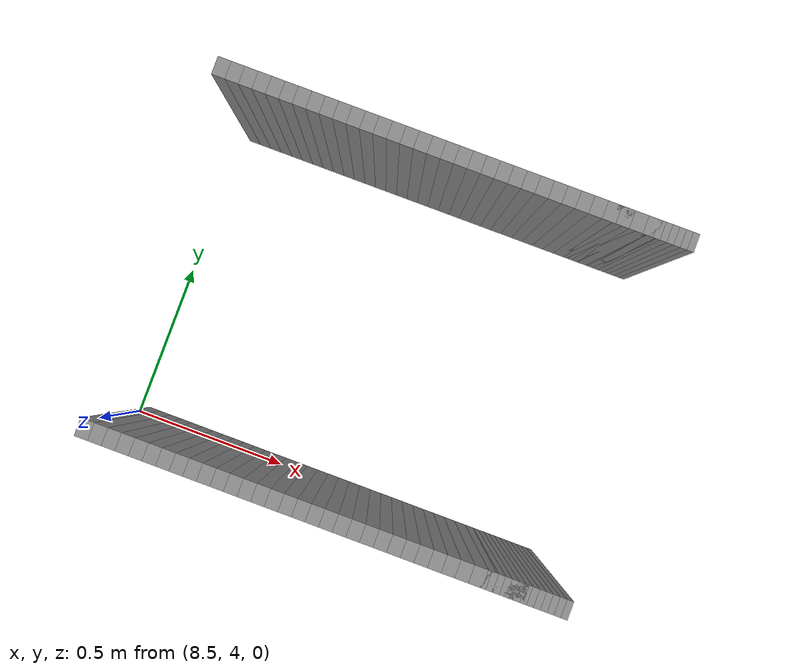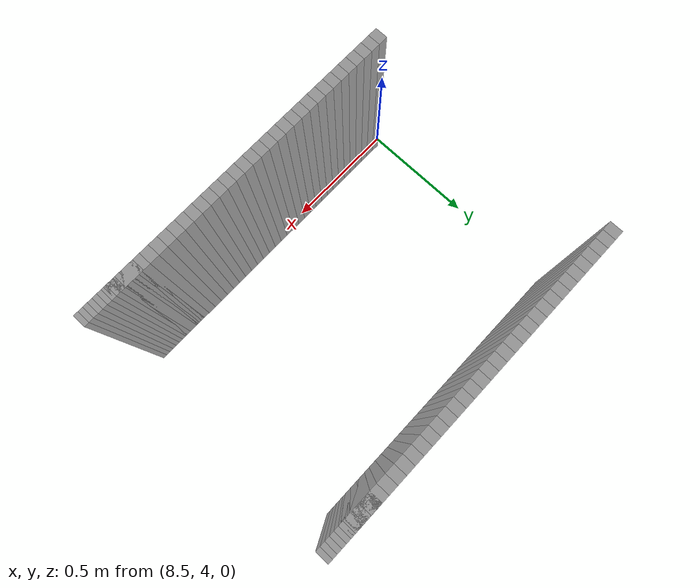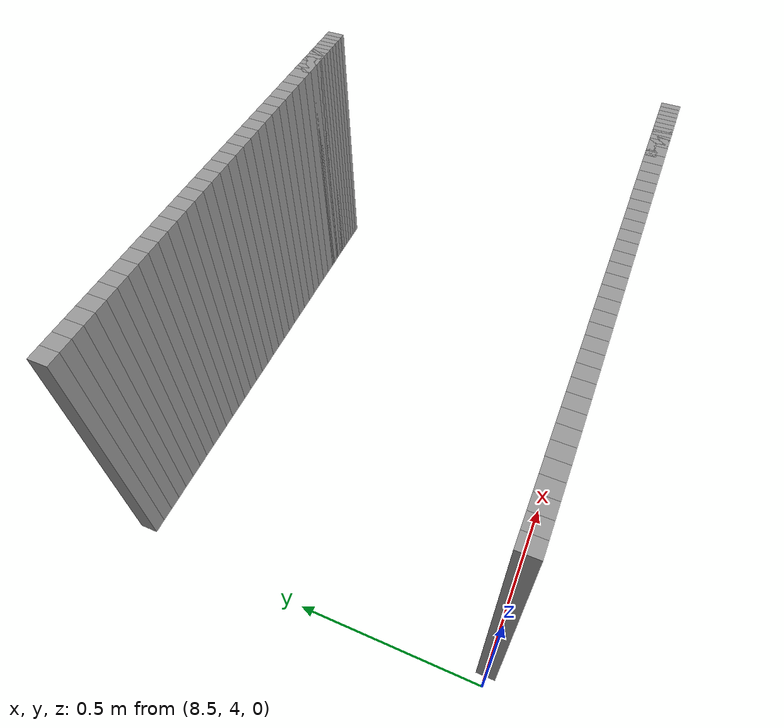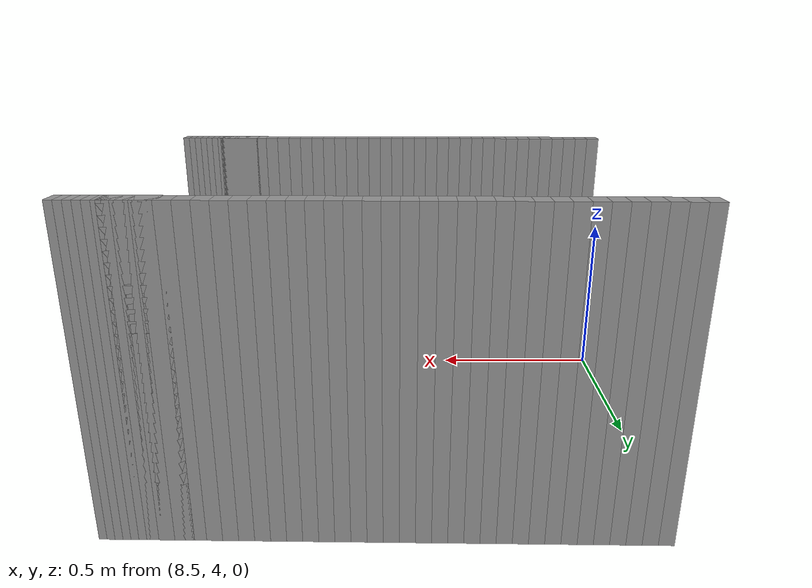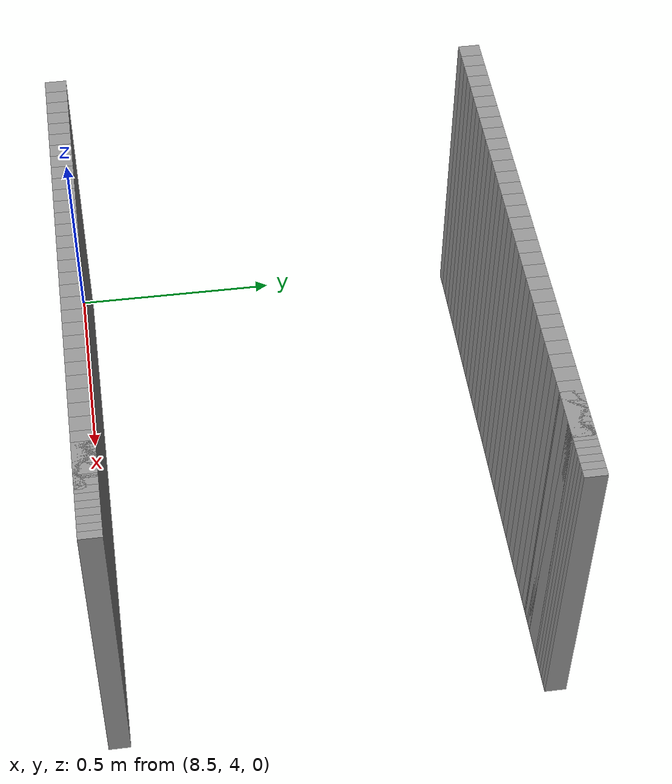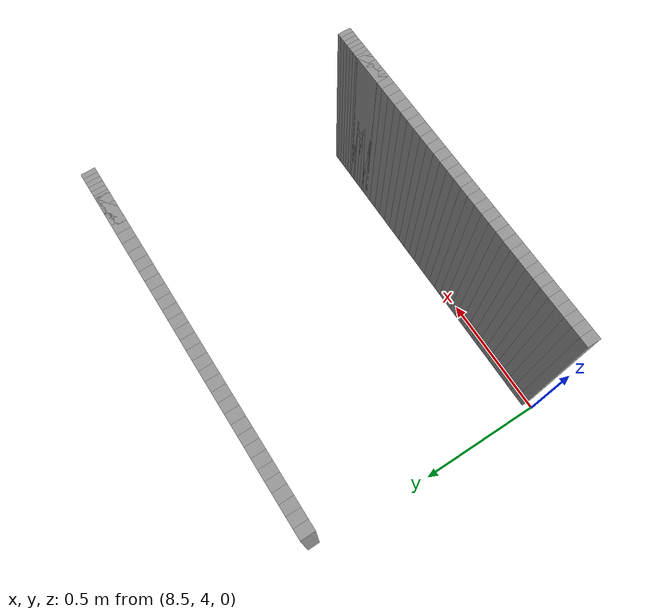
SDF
<sdf version="1.6">
 <model name="path_walls">
  <static>true</static>
  <model name="wall_left_0">
   <static>true</static>
   <pose>9.64425922822256 5.0 0.40 0 0 0.0</pose>
   <link name="wall_link">
    <visual name="wall_visual">
     <geometry><box><size>0.01863748760820627 0.05 0.8</size></box></geometry>
     <material><ambient>0.3 0.3 0.3 1</ambient><diffuse>0.6 0.6 0.6 1</diffuse></material>
    </visual>
    <collision name="wall_collision">
     <geometry><box><size>0.01863748760820627 0.05 0.8</size></box></geometry>
    </collision>
   </link>
  </model>
  <model name="wall_left_1">
   <static>true</static>
   <pose>9.662896715830767 5.0 0.40 0 0 0.0</pose>
   <link name="wall_link">
    <visual name="wall_visual">
     <geometry><box><size>0.01863748760820627 0.05 0.8</size></box></geometry>
     <material><ambient>0.3 0.3 0.3 1</ambient><diffuse>0.6 0.6 0.6 1</diffuse></material>
    </visual>
    <collision name="wall_collision">
     <geometry><box><size>0.01863748760820627 0.05 0.8</size></box></geometry>
    </collision>
   </link>
  </model>
  <model name="wall_left_2">
   <static>true</static>
   <pose>9.681534203438975 5.0 0.40 0 0 0.0</pose>
   <link name="wall_link">
    <visual name="wall_visual">
     <geometry><box><size>0.018637487608208048 0.05 0.8</size></box></geometry>
     <material><ambient>0.3 0.3 0.3 1</ambient><diffuse>0.6 0.6 0.6 1</diffuse></material>
    </visual>
    <collision name="wall_collision">
     <geometry><box><size>0.018637487608208048 0.05 0.8</size></box></geometry>
    </collision>
   </link>
  </model>
  <model name="wall_left_3">
   <static>true</static>
   <pose>9.700171691047181 5.0 0.40 0 0 0.0</pose>
   <link name="wall_link">
    <visual name="wall_visual">
     <geometry><box><size>0.018637487608208048 0.05 0.8</size></box></geometry>
     <material><ambient>0.3 0.3 0.3 1</ambient><diffuse>0.6 0.6 0.6 1</diffuse></material>
    </visual>
    <collision name="wall_collision">
     <geometry><box><size>0.018637487608208048 0.05 0.8</size></box></geometry>
    </collision>
   </link>
  </model>
  <model name="wall_left_4">
   <static>true</static>
   <pose>9.71880917865539 5.0 0.40 0 0 0.0</pose>
   <link name="wall_link">
    <visual name="wall_visual">
     <geometry><box><size>0.01863748760820627 0.05 0.8</size></box></geometry>
     <material><ambient>0.3 0.3 0.3 1</ambient><diffuse>0.6 0.6 0.6 1</diffuse></material>
    </visual>
    <collision name="wall_collision">
     <geometry><box><size>0.01863748760820627 0.05 0.8</size></box></geometry>
    </collision>
   </link>
  </model>
  <model name="wall_left_5">
   <static>true</static>
   <pose>9.737446666263597 5.0 0.40 0 0 0.0</pose>
   <link name="wall_link">
    <visual name="wall_visual">
     <geometry><box><size>0.018637487608208048 0.05 0.8</size></box></geometry>
     <material><ambient>0.3 0.3 0.3 1</ambient><diffuse>0.6 0.6 0.6 1</diffuse></material>
    </visual>
    <collision name="wall_collision">
     <geometry><box><size>0.018637487608208048 0.05 0.8</size></box></geometry>
    </collision>
   </link>
  </model>
  <model name="wall_left_6">
   <static>true</static>
   <pose>9.756084153871804 5.0 0.40 0 0 0.0</pose>
   <link name="wall_link">
    <visual name="wall_visual">
     <geometry><box><size>0.018637487608208048 0.05 0.8</size></box></geometry>
     <material><ambient>0.3 0.3 0.3 1</ambient><diffuse>0.6 0.6 0.6 1</diffuse></material>
    </visual>
    <collision name="wall_collision">
     <geometry><box><size>0.018637487608208048 0.05 0.8</size></box></geometry>
    </collision>
   </link>
  </model>
  <model name="wall_left_7">
   <static>true</static>
   <pose>9.774721641480014 5.0 0.40 0 0 0.0</pose>
   <link name="wall_link">
    <visual name="wall_visual">
     <geometry><box><size>0.018637487608208048 0.05 0.8</size></box></geometry>
     <material><ambient>0.3 0.3 0.3 1</ambient><diffuse>0.6 0.6 0.6 1</diffuse></material>
    </visual>
    <collision name="wall_collision">
     <geometry><box><size>0.018637487608208048 0.05 0.8</size></box></geometry>
    </collision>
   </link>
  </model>
  <model name="wall_left_8">
   <static>true</static>
   <pose>9.793359129088218 5.0 0.40 0 0 0.0</pose>
   <link name="wall_link">
    <visual name="wall_visual">
     <geometry><box><size>0.01863748760820272 0.05 0.8</size></box></geometry>
     <material><ambient>0.3 0.3 0.3 1</ambient><diffuse>0.6 0.6 0.6 1</diffuse></material>
    </visual>
    <collision name="wall_collision">
     <geometry><box><size>0.01863748760820272 0.05 0.8</size></box></geometry>
    </collision>
   </link>
  </model>
  <model name="wall_left_9">
   <static>true</static>
   <pose>9.811996616696424 5.0 0.40 0 0 0.0</pose>
   <link name="wall_link">
    <visual name="wall_visual">
     <geometry><box><size>0.018637487608209824 0.05 0.8</size></box></geometry>
     <material><ambient>0.3 0.3 0.3 1</ambient><diffuse>0.6 0.6 0.6 1</diffuse></material>
    </visual>
    <collision name="wall_collision">
     <geometry><box><size>0.018637487608209824 0.05 0.8</size></box></geometry>
    </collision>
   </link>
  </model>
  <model name="wall_left_10">
   <static>true</static>
   <pose>9.830634104304632 5.0 0.40 0 0 0.0</pose>
   <link name="wall_link">
    <visual name="wall_visual">
     <geometry><box><size>0.01863748760820627 0.05 0.8</size></box></geometry>
     <material><ambient>0.3 0.3 0.3 1</ambient><diffuse>0.6 0.6 0.6 1</diffuse></material>
    </visual>
    <collision name="wall_collision">
     <geometry><box><size>0.01863748760820627 0.05 0.8</size></box></geometry>
    </collision>
   </link>
  </model>
  <model name="wall_left_11">
   <static>true</static>
   <pose>9.849271591912839 5.0 0.40 0 0 0.0</pose>
   <link name="wall_link">
    <visual name="wall_visual">
     <geometry><box><size>0.018637487608208048 0.05 0.8</size></box></geometry>
     <material><ambient>0.3 0.3 0.3 1</ambient><diffuse>0.6 0.6 0.6 1</diffuse></material>
    </visual>
    <collision name="wall_collision">
     <geometry><box><size>0.018637487608208048 0.05 0.8</size></box></geometry>
    </collision>
   </link>
  </model>
  <model name="wall_left_459">
   <static>true</static>
   <pose>8.544227192126302 5.0 0.40 0 0 0.0</pose>
   <link name="wall_link">
    <visual name="wall_visual">
     <geometry><box><size>0.037274975216416095 0.05 0.8</size></box></geometry>
     <material><ambient>0.3 0.3 0.3 1</ambient><diffuse>0.6 0.6 0.6 1</diffuse></material>
    </visual>
    <collision name="wall_collision">
     <geometry><box><size>0.037274975216416095 0.05 0.8</size></box></geometry>
    </collision>
   </link>
  </model>
  <model name="wall_left_460">
   <static>true</static>
   <pose>8.581502167342716 5.0 0.40 0 0 0.0</pose>
   <link name="wall_link">
    <visual name="wall_visual">
     <geometry><box><size>0.03727497521641254 0.05 0.8</size></box></geometry>
     <material><ambient>0.3 0.3 0.3 1</ambient><diffuse>0.6 0.6 0.6 1</diffuse></material>
    </visual>
    <collision name="wall_collision">
     <geometry><box><size>0.03727497521641254 0.05 0.8</size></box></geometry>
    </collision>
   </link>
  </model>
  <model name="wall_left_461">
   <static>true</static>
   <pose>8.61877714255913 5.0 0.40 0 0 0.0</pose>
   <link name="wall_link">
    <visual name="wall_visual">
     <geometry><box><size>0.037274975216416095 0.05 0.8</size></box></geometry>
     <material><ambient>0.3 0.3 0.3 1</ambient><diffuse>0.6 0.6 0.6 1</diffuse></material>
    </visual>
    <collision name="wall_collision">
     <geometry><box><size>0.037274975216416095 0.05 0.8</size></box></geometry>
    </collision>
   </link>
  </model>
  <model name="wall_left_462">
   <static>true</static>
   <pose>8.656052117775545 5.0 0.40 0 0 0.0</pose>
   <link name="wall_link">
    <visual name="wall_visual">
     <geometry><box><size>0.03727497521641432 0.05 0.8</size></box></geometry>
     <material><ambient>0.3 0.3 0.3 1</ambient><diffuse>0.6 0.6 0.6 1</diffuse></material>
    </visual>
    <collision name="wall_collision">
     <geometry><box><size>0.03727497521641432 0.05 0.8</size></box></geometry>
    </collision>
   </link>
  </model>
  <model name="wall_left_463">
   <static>true</static>
   <pose>8.69332709299196 5.0 0.40 0 0 0.0</pose>
   <link name="wall_link">
    <visual name="wall_visual">
     <geometry><box><size>0.03727497521641432 0.05 0.8</size></box></geometry>
     <material><ambient>0.3 0.3 0.3 1</ambient><diffuse>0.6 0.6 0.6 1</diffuse></material>
    </visual>
    <collision name="wall_collision">
     <geometry><box><size>0.03727497521641432 0.05 0.8</size></box></geometry>
    </collision>
   </link>
  </model>
  <model name="wall_left_464">
   <static>true</static>
   <pose>8.730602068208373 5.0 0.40 0 0 0.0</pose>
   <link name="wall_link">
    <visual name="wall_visual">
     <geometry><box><size>0.03727497521641432 0.05 0.8</size></box></geometry>
     <material><ambient>0.3 0.3 0.3 1</ambient><diffuse>0.6 0.6 0.6 1</diffuse></material>
    </visual>
    <collision name="wall_collision">
     <geometry><box><size>0.03727497521641432 0.05 0.8</size></box></geometry>
    </collision>
   </link>
  </model>
  <model name="wall_left_465">
   <static>true</static>
   <pose>8.76787704342479 5.0 0.40 0 0 0.0</pose>
   <link name="wall_link">
    <visual name="wall_visual">
     <geometry><box><size>0.03727497521641432 0.05 0.8</size></box></geometry>
     <material><ambient>0.3 0.3 0.3 1</ambient><diffuse>0.6 0.6 0.6 1</diffuse></material>
    </visual>
    <collision name="wall_collision">
     <geometry><box><size>0.03727497521641432 0.05 0.8</size></box></geometry>
    </collision>
   </link>
  </model>
  <model name="wall_left_466">
   <static>true</static>
   <pose>8.805152018641202 5.0 0.40 0 0 0.0</pose>
   <link name="wall_link">
    <visual name="wall_visual">
     <geometry><box><size>0.03727497521641432 0.05 0.8</size></box></geometry>
     <material><ambient>0.3 0.3 0.3 1</ambient><diffuse>0.6 0.6 0.6 1</diffuse></material>
    </visual>
    <collision name="wall_collision">
     <geometry><box><size>0.03727497521641432 0.05 0.8</size></box></geometry>
    </collision>
   </link>
  </model>
  <model name="wall_left_467">
   <static>true</static>
   <pose>8.842426993857618 5.0 0.40 0 0 0.0</pose>
   <link name="wall_link">
    <visual name="wall_visual">
     <geometry><box><size>0.03727497521641432 0.05 0.8</size></box></geometry>
     <material><ambient>0.3 0.3 0.3 1</ambient><diffuse>0.6 0.6 0.6 1</diffuse></material>
    </visual>
    <collision name="wall_collision">
     <geometry><box><size>0.03727497521641432 0.05 0.8</size></box></geometry>
    </collision>
   </link>
  </model>
  <model name="wall_left_468">
   <static>true</static>
   <pose>8.879701969074032 5.0 0.40 0 0 0.0</pose>
   <link name="wall_link">
    <visual name="wall_visual">
     <geometry><box><size>0.037274975216416095 0.05 0.8</size></box></geometry>
     <material><ambient>0.3 0.3 0.3 1</ambient><diffuse>0.6 0.6 0.6 1</diffuse></material>
    </visual>
    <collision name="wall_collision">
     <geometry><box><size>0.037274975216416095 0.05 0.8</size></box></geometry>
    </collision>
   </link>
  </model>
  <model name="wall_left_469">
   <static>true</static>
   <pose>8.916976944290447 5.0 0.40 0 0 0.0</pose>
   <link name="wall_link">
    <visual name="wall_visual">
     <geometry><box><size>0.03727497521641254 0.05 0.8</size></box></geometry>
     <material><ambient>0.3 0.3 0.3 1</ambient><diffuse>0.6 0.6 0.6 1</diffuse></material>
    </visual>
    <collision name="wall_collision">
     <geometry><box><size>0.03727497521641254 0.05 0.8</size></box></geometry>
    </collision>
   </link>
  </model>
  <model name="wall_left_470">
   <static>true</static>
   <pose>8.954251919506861 5.0 0.40 0 0 0.0</pose>
   <link name="wall_link">
    <visual name="wall_visual">
     <geometry><box><size>0.037274975216416095 0.05 0.8</size></box></geometry>
     <material><ambient>0.3 0.3 0.3 1</ambient><diffuse>0.6 0.6 0.6 1</diffuse></material>
    </visual>
    <collision name="wall_collision">
     <geometry><box><size>0.037274975216416095 0.05 0.8</size></box></geometry>
    </collision>
   </link>
  </model>
  <model name="wall_left_471">
   <static>true</static>
   <pose>8.991526894723275 5.0 0.40 0 0 0.0</pose>
   <link name="wall_link">
    <visual name="wall_visual">
     <geometry><box><size>0.03727497521641254 0.05 0.8</size></box></geometry>
     <material><ambient>0.3 0.3 0.3 1</ambient><diffuse>0.6 0.6 0.6 1</diffuse></material>
    </visual>
    <collision name="wall_collision">
     <geometry><box><size>0.03727497521641254 0.05 0.8</size></box></geometry>
    </collision>
   </link>
  </model>
  <model name="wall_left_472">
   <static>true</static>
   <pose>9.02880186993969 5.0 0.40 0 0 0.0</pose>
   <link name="wall_link">
    <visual name="wall_visual">
     <geometry><box><size>0.037274975216416095 0.05 0.8</size></box></geometry>
     <material><ambient>0.3 0.3 0.3 1</ambient><diffuse>0.6 0.6 0.6 1</diffuse></material>
    </visual>
    <collision name="wall_collision">
     <geometry><box><size>0.037274975216416095 0.05 0.8</size></box></geometry>
    </collision>
   </link>
  </model>
  <model name="wall_left_473">
   <static>true</static>
   <pose>9.066076845156104 5.0 0.40 0 0 0.0</pose>
   <link name="wall_link">
    <visual name="wall_visual">
     <geometry><box><size>0.03727497521641254 0.05 0.8</size></box></geometry>
     <material><ambient>0.3 0.3 0.3 1</ambient><diffuse>0.6 0.6 0.6 1</diffuse></material>
    </visual>
    <collision name="wall_collision">
     <geometry><box><size>0.03727497521641254 0.05 0.8</size></box></geometry>
    </collision>
   </link>
  </model>
  <model name="wall_left_474">
   <static>true</static>
   <pose>9.103351820372518 5.0 0.40 0 0 0.0</pose>
   <link name="wall_link">
    <visual name="wall_visual">
     <geometry><box><size>0.037274975216416095 0.05 0.8</size></box></geometry>
     <material><ambient>0.3 0.3 0.3 1</ambient><diffuse>0.6 0.6 0.6 1</diffuse></material>
    </visual>
    <collision name="wall_collision">
     <geometry><box><size>0.037274975216416095 0.05 0.8</size></box></geometry>
    </collision>
   </link>
  </model>
  <model name="wall_left_475">
   <static>true</static>
   <pose>9.140626795588933 5.0 0.40 0 0 0.0</pose>
   <link name="wall_link">
    <visual name="wall_visual">
     <geometry><box><size>0.03727497521641432 0.05 0.8</size></box></geometry>
     <material><ambient>0.3 0.3 0.3 1</ambient><diffuse>0.6 0.6 0.6 1</diffuse></material>
    </visual>
    <collision name="wall_collision">
     <geometry><box><size>0.03727497521641432 0.05 0.8</size></box></geometry>
    </collision>
   </link>
  </model>
  <model name="wall_left_476">
   <static>true</static>
   <pose>9.177901770805349 5.0 0.40 0 0 0.0</pose>
   <link name="wall_link">
    <visual name="wall_visual">
     <geometry><box><size>0.037274975216416095 0.05 0.8</size></box></geometry>
     <material><ambient>0.3 0.3 0.3 1</ambient><diffuse>0.6 0.6 0.6 1</diffuse></material>
    </visual>
    <collision name="wall_collision">
     <geometry><box><size>0.037274975216416095 0.05 0.8</size></box></geometry>
    </collision>
   </link>
  </model>
  <model name="wall_left_477">
   <static>true</static>
   <pose>9.215176746021761 5.0 0.40 0 0 0.0</pose>
   <link name="wall_link">
    <visual name="wall_visual">
     <geometry><box><size>0.037274975216410766 0.05 0.8</size></box></geometry>
     <material><ambient>0.3 0.3 0.3 1</ambient><diffuse>0.6 0.6 0.6 1</diffuse></material>
    </visual>
    <collision name="wall_collision">
     <geometry><box><size>0.037274975216410766 0.05 0.8</size></box></geometry>
    </collision>
   </link>
  </model>
  <model name="wall_left_478">
   <static>true</static>
   <pose>9.252451721238176 5.0 0.40 0 0 0.0</pose>
   <link name="wall_link">
    <visual name="wall_visual">
     <geometry><box><size>0.037274975216416095 0.05 0.8</size></box></geometry>
     <material><ambient>0.3 0.3 0.3 1</ambient><diffuse>0.6 0.6 0.6 1</diffuse></material>
    </visual>
    <collision name="wall_collision">
     <geometry><box><size>0.037274975216416095 0.05 0.8</size></box></geometry>
    </collision>
   </link>
  </model>
  <model name="wall_left_479">
   <static>true</static>
   <pose>9.289726696454592 5.0 0.40 0 0 0.0</pose>
   <link name="wall_link">
    <visual name="wall_visual">
     <geometry><box><size>0.037274975216416095 0.05 0.8</size></box></geometry>
     <material><ambient>0.3 0.3 0.3 1</ambient><diffuse>0.6 0.6 0.6 1</diffuse></material>
    </visual>
    <collision name="wall_collision">
     <geometry><box><size>0.037274975216416095 0.05 0.8</size></box></geometry>
    </collision>
   </link>
  </model>
  <model name="wall_left_480">
   <static>true</static>
   <pose>9.327001671671006 5.0 0.40 0 0 0.0</pose>
   <link name="wall_link">
    <visual name="wall_visual">
     <geometry><box><size>0.03727497521641254 0.05 0.8</size></box></geometry>
     <material><ambient>0.3 0.3 0.3 1</ambient><diffuse>0.6 0.6 0.6 1</diffuse></material>
    </visual>
    <collision name="wall_collision">
     <geometry><box><size>0.03727497521641254 0.05 0.8</size></box></geometry>
    </collision>
   </link>
  </model>
  <model name="wall_left_481">
   <static>true</static>
   <pose>9.36427664688742 5.0 0.40 0 0 0.0</pose>
   <link name="wall_link">
    <visual name="wall_visual">
     <geometry><box><size>0.037274975216416095 0.05 0.8</size></box></geometry>
     <material><ambient>0.3 0.3 0.3 1</ambient><diffuse>0.6 0.6 0.6 1</diffuse></material>
    </visual>
    <collision name="wall_collision">
     <geometry><box><size>0.037274975216416095 0.05 0.8</size></box></geometry>
    </collision>
   </link>
  </model>
  <model name="wall_left_482">
   <static>true</static>
   <pose>9.401551622103835 5.0 0.40 0 0 0.0</pose>
   <link name="wall_link">
    <visual name="wall_visual">
     <geometry><box><size>0.037274975216410766 0.05 0.8</size></box></geometry>
     <material><ambient>0.3 0.3 0.3 1</ambient><diffuse>0.6 0.6 0.6 1</diffuse></material>
    </visual>
    <collision name="wall_collision">
     <geometry><box><size>0.037274975216410766 0.05 0.8</size></box></geometry>
    </collision>
   </link>
  </model>
  <model name="wall_left_483">
   <static>true</static>
   <pose>9.438826597320247 5.0 0.40 0 0 0.0</pose>
   <link name="wall_link">
    <visual name="wall_visual">
     <geometry><box><size>0.037274975216416095 0.05 0.8</size></box></geometry>
     <material><ambient>0.3 0.3 0.3 1</ambient><diffuse>0.6 0.6 0.6 1</diffuse></material>
    </visual>
    <collision name="wall_collision">
     <geometry><box><size>0.037274975216416095 0.05 0.8</size></box></geometry>
    </collision>
   </link>
  </model>
  <model name="wall_left_484">
   <static>true</static>
   <pose>9.476101572536663 5.0 0.40 0 0 0.0</pose>
   <link name="wall_link">
    <visual name="wall_visual">
     <geometry><box><size>0.03727497521641432 0.05 0.8</size></box></geometry>
     <material><ambient>0.3 0.3 0.3 1</ambient><diffuse>0.6 0.6 0.6 1</diffuse></material>
    </visual>
    <collision name="wall_collision">
     <geometry><box><size>0.03727497521641432 0.05 0.8</size></box></geometry>
    </collision>
   </link>
  </model>
  <model name="wall_left_485">
   <static>true</static>
   <pose>9.513376547753078 5.0 0.40 0 0 0.0</pose>
   <link name="wall_link">
    <visual name="wall_visual">
     <geometry><box><size>0.037274975216416095 0.05 0.8</size></box></geometry>
     <material><ambient>0.3 0.3 0.3 1</ambient><diffuse>0.6 0.6 0.6 1</diffuse></material>
    </visual>
    <collision name="wall_collision">
     <geometry><box><size>0.037274975216416095 0.05 0.8</size></box></geometry>
    </collision>
   </link>
  </model>
  <model name="wall_left_486">
   <static>true</static>
   <pose>9.550651522969492 5.0 0.40 0 0 0.0</pose>
   <link name="wall_link">
    <visual name="wall_visual">
     <geometry><box><size>0.03727497521641254 0.05 0.8</size></box></geometry>
     <material><ambient>0.3 0.3 0.3 1</ambient><diffuse>0.6 0.6 0.6 1</diffuse></material>
    </visual>
    <collision name="wall_collision">
     <geometry><box><size>0.03727497521641254 0.05 0.8</size></box></geometry>
    </collision>
   </link>
  </model>
  <model name="wall_left_487">
   <static>true</static>
   <pose>9.587926498185906 5.0 0.40 0 0 0.0</pose>
   <link name="wall_link">
    <visual name="wall_visual">
     <geometry><box><size>0.037274975216416095 0.05 0.8</size></box></geometry>
     <material><ambient>0.3 0.3 0.3 1</ambient><diffuse>0.6 0.6 0.6 1</diffuse></material>
    </visual>
    <collision name="wall_collision">
     <geometry><box><size>0.037274975216416095 0.05 0.8</size></box></geometry>
    </collision>
   </link>
  </model>
  <model name="wall_left_488">
   <static>true</static>
   <pose>9.62520147340232 5.0 0.40 0 0 0.0</pose>
   <link name="wall_link">
    <visual name="wall_visual">
     <geometry><box><size>0.03727497521641432 0.05 0.8</size></box></geometry>
     <material><ambient>0.3 0.3 0.3 1</ambient><diffuse>0.6 0.6 0.6 1</diffuse></material>
    </visual>
    <collision name="wall_collision">
     <geometry><box><size>0.03727497521641432 0.05 0.8</size></box></geometry>
    </collision>
   </link>
  </model>
  <model name="wall_left_489">
   <static>true</static>
   <pose>9.662476448618737 5.0 0.40 0 0 0.0</pose>
   <link name="wall_link">
    <visual name="wall_visual">
     <geometry><box><size>0.037274975216416095 0.05 0.8</size></box></geometry>
     <material><ambient>0.3 0.3 0.3 1</ambient><diffuse>0.6 0.6 0.6 1</diffuse></material>
    </visual>
    <collision name="wall_collision">
     <geometry><box><size>0.037274975216416095 0.05 0.8</size></box></geometry>
    </collision>
   </link>
  </model>
  <model name="wall_left_490">
   <static>true</static>
   <pose>9.69975142383515 5.0 0.40 0 0 0.0</pose>
   <link name="wall_link">
    <visual name="wall_visual">
     <geometry><box><size>0.037274975216410766 0.05 0.8</size></box></geometry>
     <material><ambient>0.3 0.3 0.3 1</ambient><diffuse>0.6 0.6 0.6 1</diffuse></material>
    </visual>
    <collision name="wall_collision">
     <geometry><box><size>0.037274975216410766 0.05 0.8</size></box></geometry>
    </collision>
   </link>
  </model>
  <model name="wall_left_491">
   <static>true</static>
   <pose>9.737026399051564 5.0 0.40 0 0 0.0</pose>
   <link name="wall_link">
    <visual name="wall_visual">
     <geometry><box><size>0.037274975216416095 0.05 0.8</size></box></geometry>
     <material><ambient>0.3 0.3 0.3 1</ambient><diffuse>0.6 0.6 0.6 1</diffuse></material>
    </visual>
    <collision name="wall_collision">
     <geometry><box><size>0.037274975216416095 0.05 0.8</size></box></geometry>
    </collision>
   </link>
  </model>
  <model name="wall_left_492">
   <static>true</static>
   <pose>9.695302185539115 5.0 0.40 0 0 3.141592653589793</pose>
   <link name="wall_link">
    <visual name="wall_visual">
     <geometry><box><size>0.12072340224131395 0.05 0.8</size></box></geometry>
     <material><ambient>0.3 0.3 0.3 1</ambient><diffuse>0.6 0.6 0.6 1</diffuse></material>
    </visual>
    <collision name="wall_collision">
     <geometry><box><size>0.12072340224131395 0.05 0.8</size></box></geometry>
    </collision>
   </link>
  </model>
  <model name="wall_right_0">
   <static>true</static>
   <pose>9.64425922822256 4.0 0.40 0 0 0.0</pose>
   <link name="wall_link">
    <visual name="wall_visual">
     <geometry><box><size>0.01863748760820627 0.05 0.8</size></box></geometry>
     <material><ambient>0.3 0.3 0.3 1</ambient><diffuse>0.6 0.6 0.6 1</diffuse></material>
    </visual>
    <collision name="wall_collision">
     <geometry><box><size>0.01863748760820627 0.05 0.8</size></box></geometry>
    </collision>
   </link>
  </model>
  <model name="wall_right_1">
   <static>true</static>
   <pose>9.662896715830767 4.0 0.40 0 0 0.0</pose>
   <link name="wall_link">
    <visual name="wall_visual">
     <geometry><box><size>0.01863748760820627 0.05 0.8</size></box></geometry>
     <material><ambient>0.3 0.3 0.3 1</ambient><diffuse>0.6 0.6 0.6 1</diffuse></material>
    </visual>
    <collision name="wall_collision">
     <geometry><box><size>0.01863748760820627 0.05 0.8</size></box></geometry>
    </collision>
   </link>
  </model>
  <model name="wall_right_2">
   <static>true</static>
   <pose>9.681534203438975 4.0 0.40 0 0 0.0</pose>
   <link name="wall_link">
    <visual name="wall_visual">
     <geometry><box><size>0.018637487608208048 0.05 0.8</size></box></geometry>
     <material><ambient>0.3 0.3 0.3 1</ambient><diffuse>0.6 0.6 0.6 1</diffuse></material>
    </visual>
    <collision name="wall_collision">
     <geometry><box><size>0.018637487608208048 0.05 0.8</size></box></geometry>
    </collision>
   </link>
  </model>
  <model name="wall_right_3">
   <static>true</static>
   <pose>9.700171691047181 4.0 0.40 0 0 0.0</pose>
   <link name="wall_link">
    <visual name="wall_visual">
     <geometry><box><size>0.018637487608208048 0.05 0.8</size></box></geometry>
     <material><ambient>0.3 0.3 0.3 1</ambient><diffuse>0.6 0.6 0.6 1</diffuse></material>
    </visual>
    <collision name="wall_collision">
     <geometry><box><size>0.018637487608208048 0.05 0.8</size></box></geometry>
    </collision>
   </link>
  </model>
  <model name="wall_right_4">
   <static>true</static>
   <pose>9.71880917865539 4.0 0.40 0 0 0.0</pose>
   <link name="wall_link">
    <visual name="wall_visual">
     <geometry><box><size>0.01863748760820627 0.05 0.8</size></box></geometry>
     <material><ambient>0.3 0.3 0.3 1</ambient><diffuse>0.6 0.6 0.6 1</diffuse></material>
    </visual>
    <collision name="wall_collision">
     <geometry><box><size>0.01863748760820627 0.05 0.8</size></box></geometry>
    </collision>
   </link>
  </model>
  <model name="wall_right_5">
   <static>true</static>
   <pose>9.737446666263597 4.0 0.40 0 0 0.0</pose>
   <link name="wall_link">
    <visual name="wall_visual">
     <geometry><box><size>0.018637487608208048 0.05 0.8</size></box></geometry>
     <material><ambient>0.3 0.3 0.3 1</ambient><diffuse>0.6 0.6 0.6 1</diffuse></material>
    </visual>
    <collision name="wall_collision">
     <geometry><box><size>0.018637487608208048 0.05 0.8</size></box></geometry>
    </collision>
   </link>
  </model>
  <model name="wall_right_6">
   <static>true</static>
   <pose>9.756084153871804 4.0 0.40 0 0 0.0</pose>
   <link name="wall_link">
    <visual name="wall_visual">
     <geometry><box><size>0.018637487608208048 0.05 0.8</size></box></geometry>
     <material><ambient>0.3 0.3 0.3 1</ambient><diffuse>0.6 0.6 0.6 1</diffuse></material>
    </visual>
    <collision name="wall_collision">
     <geometry><box><size>0.018637487608208048 0.05 0.8</size></box></geometry>
    </collision>
   </link>
  </model>
  <model name="wall_right_7">
   <static>true</static>
   <pose>9.774721641480014 4.0 0.40 0 0 0.0</pose>
   <link name="wall_link">
    <visual name="wall_visual">
     <geometry><box><size>0.018637487608208048 0.05 0.8</size></box></geometry>
     <material><ambient>0.3 0.3 0.3 1</ambient><diffuse>0.6 0.6 0.6 1</diffuse></material>
    </visual>
    <collision name="wall_collision">
     <geometry><box><size>0.018637487608208048 0.05 0.8</size></box></geometry>
    </collision>
   </link>
  </model>
  <model name="wall_right_8">
   <static>true</static>
   <pose>9.793359129088218 4.0 0.40 0 0 0.0</pose>
   <link name="wall_link">
    <visual name="wall_visual">
     <geometry><box><size>0.01863748760820272 0.05 0.8</size></box></geometry>
     <material><ambient>0.3 0.3 0.3 1</ambient><diffuse>0.6 0.6 0.6 1</diffuse></material>
    </visual>
    <collision name="wall_collision">
     <geometry><box><size>0.01863748760820272 0.05 0.8</size></box></geometry>
    </collision>
   </link>
  </model>
  <model name="wall_right_9">
   <static>true</static>
   <pose>9.811996616696424 4.0 0.40 0 0 0.0</pose>
   <link name="wall_link">
    <visual name="wall_visual">
     <geometry><box><size>0.018637487608209824 0.05 0.8</size></box></geometry>
     <material><ambient>0.3 0.3 0.3 1</ambient><diffuse>0.6 0.6 0.6 1</diffuse></material>
    </visual>
    <collision name="wall_collision">
     <geometry><box><size>0.018637487608209824 0.05 0.8</size></box></geometry>
    </collision>
   </link>
  </model>
  <model name="wall_right_10">
   <static>true</static>
   <pose>9.830634104304632 4.0 0.40 0 0 0.0</pose>
   <link name="wall_link">
    <visual name="wall_visual">
     <geometry><box><size>0.01863748760820627 0.05 0.8</size></box></geometry>
     <material><ambient>0.3 0.3 0.3 1</ambient><diffuse>0.6 0.6 0.6 1</diffuse></material>
    </visual>
    <collision name="wall_collision">
     <geometry><box><size>0.01863748760820627 0.05 0.8</size></box></geometry>
    </collision>
   </link>
  </model>
  <model name="wall_right_11">
   <static>true</static>
   <pose>9.849271591912839 4.0 0.40 0 0 0.0</pose>
   <link name="wall_link">
    <visual name="wall_visual">
     <geometry><box><size>0.018637487608208048 0.05 0.8</size></box></geometry>
     <material><ambient>0.3 0.3 0.3 1</ambient><diffuse>0.6 0.6 0.6 1</diffuse></material>
    </visual>
    <collision name="wall_collision">
     <geometry><box><size>0.018637487608208048 0.05 0.8</size></box></geometry>
    </collision>
   </link>
  </model>
  <model name="wall_right_12">
   <static>true</static>
   <pose>9.867909079521047 4.0 0.40 0 0 0.0</pose>
   <link name="wall_link">
    <visual name="wall_visual">
     <geometry><box><size>0.01863748760820627 0.05 0.8</size></box></geometry>
     <material><ambient>0.3 0.3 0.3 1</ambient><diffuse>0.6 0.6 0.6 1</diffuse></material>
    </visual>
    <collision name="wall_collision">
     <geometry><box><size>0.01863748760820627 0.05 0.8</size></box></geometry>
    </collision>
   </link>
  </model>
  <model name="wall_right_459">
   <static>true</static>
   <pose>8.544227192126302 4.0 0.40 0 0 0.0</pose>
   <link name="wall_link">
    <visual name="wall_visual">
     <geometry><box><size>0.037274975216416095 0.05 0.8</size></box></geometry>
     <material><ambient>0.3 0.3 0.3 1</ambient><diffuse>0.6 0.6 0.6 1</diffuse></material>
    </visual>
    <collision name="wall_collision">
     <geometry><box><size>0.037274975216416095 0.05 0.8</size></box></geometry>
    </collision>
   </link>
  </model>
  <model name="wall_right_460">
   <static>true</static>
   <pose>8.581502167342716 4.0 0.40 0 0 0.0</pose>
   <link name="wall_link">
    <visual name="wall_visual">
     <geometry><box><size>0.03727497521641254 0.05 0.8</size></box></geometry>
     <material><ambient>0.3 0.3 0.3 1</ambient><diffuse>0.6 0.6 0.6 1</diffuse></material>
    </visual>
    <collision name="wall_collision">
     <geometry><box><size>0.03727497521641254 0.05 0.8</size></box></geometry>
    </collision>
   </link>
  </model>
  <model name="wall_right_461">
   <static>true</static>
   <pose>8.61877714255913 4.0 0.40 0 0 0.0</pose>
   <link name="wall_link">
    <visual name="wall_visual">
     <geometry><box><size>0.037274975216416095 0.05 0.8</size></box></geometry>
     <material><ambient>0.3 0.3 0.3 1</ambient><diffuse>0.6 0.6 0.6 1</diffuse></material>
    </visual>
    <collision name="wall_collision">
     <geometry><box><size>0.037274975216416095 0.05 0.8</size></box></geometry>
    </collision>
   </link>
  </model>
  <model name="wall_right_462">
   <static>true</static>
   <pose>8.656052117775545 4.0 0.40 0 0 0.0</pose>
   <link name="wall_link">
    <visual name="wall_visual">
     <geometry><box><size>0.03727497521641432 0.05 0.8</size></box></geometry>
     <material><ambient>0.3 0.3 0.3 1</ambient><diffuse>0.6 0.6 0.6 1</diffuse></material>
    </visual>
    <collision name="wall_collision">
     <geometry><box><size>0.03727497521641432 0.05 0.8</size></box></geometry>
    </collision>
   </link>
  </model>
  <model name="wall_right_463">
   <static>true</static>
   <pose>8.69332709299196 4.0 0.40 0 0 0.0</pose>
   <link name="wall_link">
    <visual name="wall_visual">
     <geometry><box><size>0.03727497521641432 0.05 0.8</size></box></geometry>
     <material><ambient>0.3 0.3 0.3 1</ambient><diffuse>0.6 0.6 0.6 1</diffuse></material>
    </visual>
    <collision name="wall_collision">
     <geometry><box><size>0.03727497521641432 0.05 0.8</size></box></geometry>
    </collision>
   </link>
  </model>
  <model name="wall_right_464">
   <static>true</static>
   <pose>8.730602068208373 4.0 0.40 0 0 0.0</pose>
   <link name="wall_link">
    <visual name="wall_visual">
     <geometry><box><size>0.03727497521641432 0.05 0.8</size></box></geometry>
     <material><ambient>0.3 0.3 0.3 1</ambient><diffuse>0.6 0.6 0.6 1</diffuse></material>
    </visual>
    <collision name="wall_collision">
     <geometry><box><size>0.03727497521641432 0.05 0.8</size></box></geometry>
    </collision>
   </link>
  </model>
  <model name="wall_right_465">
   <static>true</static>
   <pose>8.76787704342479 4.0 0.40 0 0 0.0</pose>
   <link name="wall_link">
    <visual name="wall_visual">
     <geometry><box><size>0.03727497521641432 0.05 0.8</size></box></geometry>
     <material><ambient>0.3 0.3 0.3 1</ambient><diffuse>0.6 0.6 0.6 1</diffuse></material>
    </visual>
    <collision name="wall_collision">
     <geometry><box><size>0.03727497521641432 0.05 0.8</size></box></geometry>
    </collision>
   </link>
  </model>
  <model name="wall_right_466">
   <static>true</static>
   <pose>8.805152018641202 4.0 0.40 0 0 0.0</pose>
   <link name="wall_link">
    <visual name="wall_visual">
     <geometry><box><size>0.03727497521641432 0.05 0.8</size></box></geometry>
     <material><ambient>0.3 0.3 0.3 1</ambient><diffuse>0.6 0.6 0.6 1</diffuse></material>
    </visual>
    <collision name="wall_collision">
     <geometry><box><size>0.03727497521641432 0.05 0.8</size></box></geometry>
    </collision>
   </link>
  </model>
  <model name="wall_right_467">
   <static>true</static>
   <pose>8.842426993857618 4.0 0.40 0 0 0.0</pose>
   <link name="wall_link">
    <visual name="wall_visual">
     <geometry><box><size>0.03727497521641432 0.05 0.8</size></box></geometry>
     <material><ambient>0.3 0.3 0.3 1</ambient><diffuse>0.6 0.6 0.6 1</diffuse></material>
    </visual>
    <collision name="wall_collision">
     <geometry><box><size>0.03727497521641432 0.05 0.8</size></box></geometry>
    </collision>
   </link>
  </model>
  <model name="wall_right_468">
   <static>true</static>
   <pose>8.879701969074032 4.0 0.40 0 0 0.0</pose>
   <link name="wall_link">
    <visual name="wall_visual">
     <geometry><box><size>0.037274975216416095 0.05 0.8</size></box></geometry>
     <material><ambient>0.3 0.3 0.3 1</ambient><diffuse>0.6 0.6 0.6 1</diffuse></material>
    </visual>
    <collision name="wall_collision">
     <geometry><box><size>0.037274975216416095 0.05 0.8</size></box></geometry>
    </collision>
   </link>
  </model>
  <model name="wall_right_469">
   <static>true</static>
   <pose>8.916976944290447 4.0 0.40 0 0 0.0</pose>
   <link name="wall_link">
    <visual name="wall_visual">
     <geometry><box><size>0.03727497521641254 0.05 0.8</size></box></geometry>
     <material><ambient>0.3 0.3 0.3 1</ambient><diffuse>0.6 0.6 0.6 1</diffuse></material>
    </visual>
    <collision name="wall_collision">
     <geometry><box><size>0.03727497521641254 0.05 0.8</size></box></geometry>
    </collision>
   </link>
  </model>
  <model name="wall_right_470">
   <static>true</static>
   <pose>8.954251919506861 4.0 0.40 0 0 0.0</pose>
   <link name="wall_link">
    <visual name="wall_visual">
     <geometry><box><size>0.037274975216416095 0.05 0.8</size></box></geometry>
     <material><ambient>0.3 0.3 0.3 1</ambient><diffuse>0.6 0.6 0.6 1</diffuse></material>
    </visual>
    <collision name="wall_collision">
     <geometry><box><size>0.037274975216416095 0.05 0.8</size></box></geometry>
    </collision>
   </link>
  </model>
  <model name="wall_right_471">
   <static>true</static>
   <pose>8.991526894723275 4.0 0.40 0 0 0.0</pose>
   <link name="wall_link">
    <visual name="wall_visual">
     <geometry><box><size>0.03727497521641254 0.05 0.8</size></box></geometry>
     <material><ambient>0.3 0.3 0.3 1</ambient><diffuse>0.6 0.6 0.6 1</diffuse></material>
    </visual>
    <collision name="wall_collision">
     <geometry><box><size>0.03727497521641254 0.05 0.8</size></box></geometry>
    </collision>
   </link>
  </model>
  <model name="wall_right_472">
   <static>true</static>
   <pose>9.02880186993969 4.0 0.40 0 0 0.0</pose>
   <link name="wall_link">
    <visual name="wall_visual">
     <geometry><box><size>0.037274975216416095 0.05 0.8</size></box></geometry>
     <material><ambient>0.3 0.3 0.3 1</ambient><diffuse>0.6 0.6 0.6 1</diffuse></material>
    </visual>
    <collision name="wall_collision">
     <geometry><box><size>0.037274975216416095 0.05 0.8</size></box></geometry>
    </collision>
   </link>
  </model>
  <model name="wall_right_473">
   <static>true</static>
   <pose>9.066076845156104 4.0 0.40 0 0 0.0</pose>
   <link name="wall_link">
    <visual name="wall_visual">
     <geometry><box><size>0.03727497521641254 0.05 0.8</size></box></geometry>
     <material><ambient>0.3 0.3 0.3 1</ambient><diffuse>0.6 0.6 0.6 1</diffuse></material>
    </visual>
    <collision name="wall_collision">
     <geometry><box><size>0.03727497521641254 0.05 0.8</size></box></geometry>
    </collision>
   </link>
  </model>
  <model name="wall_right_474">
   <static>true</static>
   <pose>9.103351820372518 4.0 0.40 0 0 0.0</pose>
   <link name="wall_link">
    <visual name="wall_visual">
     <geometry><box><size>0.037274975216416095 0.05 0.8</size></box></geometry>
     <material><ambient>0.3 0.3 0.3 1</ambient><diffuse>0.6 0.6 0.6 1</diffuse></material>
    </visual>
    <collision name="wall_collision">
     <geometry><box><size>0.037274975216416095 0.05 0.8</size></box></geometry>
    </collision>
   </link>
  </model>
  <model name="wall_right_475">
   <static>true</static>
   <pose>9.140626795588933 4.0 0.40 0 0 0.0</pose>
   <link name="wall_link">
    <visual name="wall_visual">
     <geometry><box><size>0.03727497521641432 0.05 0.8</size></box></geometry>
     <material><ambient>0.3 0.3 0.3 1</ambient><diffuse>0.6 0.6 0.6 1</diffuse></material>
    </visual>
    <collision name="wall_collision">
     <geometry><box><size>0.03727497521641432 0.05 0.8</size></box></geometry>
    </collision>
   </link>
  </model>
  <model name="wall_right_476">
   <static>true</static>
   <pose>9.177901770805349 4.0 0.40 0 0 0.0</pose>
   <link name="wall_link">
    <visual name="wall_visual">
     <geometry><box><size>0.037274975216416095 0.05 0.8</size></box></geometry>
     <material><ambient>0.3 0.3 0.3 1</ambient><diffuse>0.6 0.6 0.6 1</diffuse></material>
    </visual>
    <collision name="wall_collision">
     <geometry><box><size>0.037274975216416095 0.05 0.8</size></box></geometry>
    </collision>
   </link>
  </model>
  <model name="wall_right_477">
   <static>true</static>
   <pose>9.215176746021761 4.0 0.40 0 0 0.0</pose>
   <link name="wall_link">
    <visual name="wall_visual">
     <geometry><box><size>0.037274975216410766 0.05 0.8</size></box></geometry>
     <material><ambient>0.3 0.3 0.3 1</ambient><diffuse>0.6 0.6 0.6 1</diffuse></material>
    </visual>
    <collision name="wall_collision">
     <geometry><box><size>0.037274975216410766 0.05 0.8</size></box></geometry>
    </collision>
   </link>
  </model>
  <model name="wall_right_478">
   <static>true</static>
   <pose>9.252451721238176 4.0 0.40 0 0 0.0</pose>
   <link name="wall_link">
    <visual name="wall_visual">
     <geometry><box><size>0.037274975216416095 0.05 0.8</size></box></geometry>
     <material><ambient>0.3 0.3 0.3 1</ambient><diffuse>0.6 0.6 0.6 1</diffuse></material>
    </visual>
    <collision name="wall_collision">
     <geometry><box><size>0.037274975216416095 0.05 0.8</size></box></geometry>
    </collision>
   </link>
  </model>
  <model name="wall_right_479">
   <static>true</static>
   <pose>9.289726696454592 4.0 0.40 0 0 0.0</pose>
   <link name="wall_link">
    <visual name="wall_visual">
     <geometry><box><size>0.037274975216416095 0.05 0.8</size></box></geometry>
     <material><ambient>0.3 0.3 0.3 1</ambient><diffuse>0.6 0.6 0.6 1</diffuse></material>
    </visual>
    <collision name="wall_collision">
     <geometry><box><size>0.037274975216416095 0.05 0.8</size></box></geometry>
    </collision>
   </link>
  </model>
  <model name="wall_right_480">
   <static>true</static>
   <pose>9.327001671671006 4.0 0.40 0 0 0.0</pose>
   <link name="wall_link">
    <visual name="wall_visual">
     <geometry><box><size>0.03727497521641254 0.05 0.8</size></box></geometry>
     <material><ambient>0.3 0.3 0.3 1</ambient><diffuse>0.6 0.6 0.6 1</diffuse></material>
    </visual>
    <collision name="wall_collision">
     <geometry><box><size>0.03727497521641254 0.05 0.8</size></box></geometry>
    </collision>
   </link>
  </model>
  <model name="wall_right_481">
   <static>true</static>
   <pose>9.36427664688742 4.0 0.40 0 0 0.0</pose>
   <link name="wall_link">
    <visual name="wall_visual">
     <geometry><box><size>0.037274975216416095 0.05 0.8</size></box></geometry>
     <material><ambient>0.3 0.3 0.3 1</ambient><diffuse>0.6 0.6 0.6 1</diffuse></material>
    </visual>
    <collision name="wall_collision">
     <geometry><box><size>0.037274975216416095 0.05 0.8</size></box></geometry>
    </collision>
   </link>
  </model>
  <model name="wall_right_482">
   <static>true</static>
   <pose>9.401551622103835 4.0 0.40 0 0 0.0</pose>
   <link name="wall_link">
    <visual name="wall_visual">
     <geometry><box><size>0.037274975216410766 0.05 0.8</size></box></geometry>
     <material><ambient>0.3 0.3 0.3 1</ambient><diffuse>0.6 0.6 0.6 1</diffuse></material>
    </visual>
    <collision name="wall_collision">
     <geometry><box><size>0.037274975216410766 0.05 0.8</size></box></geometry>
    </collision>
   </link>
  </model>
  <model name="wall_right_483">
   <static>true</static>
   <pose>9.438826597320247 4.0 0.40 0 0 0.0</pose>
   <link name="wall_link">
    <visual name="wall_visual">
     <geometry><box><size>0.037274975216416095 0.05 0.8</size></box></geometry>
     <material><ambient>0.3 0.3 0.3 1</ambient><diffuse>0.6 0.6 0.6 1</diffuse></material>
    </visual>
    <collision name="wall_collision">
     <geometry><box><size>0.037274975216416095 0.05 0.8</size></box></geometry>
    </collision>
   </link>
  </model>
  <model name="wall_right_484">
   <static>true</static>
   <pose>9.476101572536663 4.0 0.40 0 0 0.0</pose>
   <link name="wall_link">
    <visual name="wall_visual">
     <geometry><box><size>0.03727497521641432 0.05 0.8</size></box></geometry>
     <material><ambient>0.3 0.3 0.3 1</ambient><diffuse>0.6 0.6 0.6 1</diffuse></material>
    </visual>
    <collision name="wall_collision">
     <geometry><box><size>0.03727497521641432 0.05 0.8</size></box></geometry>
    </collision>
   </link>
  </model>
  <model name="wall_right_485">
   <static>true</static>
   <pose>9.513376547753078 4.0 0.40 0 0 0.0</pose>
   <link name="wall_link">
    <visual name="wall_visual">
     <geometry><box><size>0.037274975216416095 0.05 0.8</size></box></geometry>
     <material><ambient>0.3 0.3 0.3 1</ambient><diffuse>0.6 0.6 0.6 1</diffuse></material>
    </visual>
    <collision name="wall_collision">
     <geometry><box><size>0.037274975216416095 0.05 0.8</size></box></geometry>
    </collision>
   </link>
  </model>
  <model name="wall_right_486">
   <static>true</static>
   <pose>9.550651522969492 4.0 0.40 0 0 0.0</pose>
   <link name="wall_link">
    <visual name="wall_visual">
     <geometry><box><size>0.03727497521641254 0.05 0.8</size></box></geometry>
     <material><ambient>0.3 0.3 0.3 1</ambient><diffuse>0.6 0.6 0.6 1</diffuse></material>
    </visual>
    <collision name="wall_collision">
     <geometry><box><size>0.03727497521641254 0.05 0.8</size></box></geometry>
    </collision>
   </link>
  </model>
  <model name="wall_right_487">
   <static>true</static>
   <pose>9.587926498185906 4.0 0.40 0 0 0.0</pose>
   <link name="wall_link">
    <visual name="wall_visual">
     <geometry><box><size>0.037274975216416095 0.05 0.8</size></box></geometry>
     <material><ambient>0.3 0.3 0.3 1</ambient><diffuse>0.6 0.6 0.6 1</diffuse></material>
    </visual>
    <collision name="wall_collision">
     <geometry><box><size>0.037274975216416095 0.05 0.8</size></box></geometry>
    </collision>
   </link>
  </model>
  <model name="wall_right_488">
   <static>true</static>
   <pose>9.62520147340232 4.0 0.40 0 0 0.0</pose>
   <link name="wall_link">
    <visual name="wall_visual">
     <geometry><box><size>0.03727497521641432 0.05 0.8</size></box></geometry>
     <material><ambient>0.3 0.3 0.3 1</ambient><diffuse>0.6 0.6 0.6 1</diffuse></material>
    </visual>
    <collision name="wall_collision">
     <geometry><box><size>0.03727497521641432 0.05 0.8</size></box></geometry>
    </collision>
   </link>
  </model>
  <model name="wall_right_489">
   <static>true</static>
   <pose>9.662476448618737 4.0 0.40 0 0 0.0</pose>
   <link name="wall_link">
    <visual name="wall_visual">
     <geometry><box><size>0.037274975216416095 0.05 0.8</size></box></geometry>
     <material><ambient>0.3 0.3 0.3 1</ambient><diffuse>0.6 0.6 0.6 1</diffuse></material>
    </visual>
    <collision name="wall_collision">
     <geometry><box><size>0.037274975216416095 0.05 0.8</size></box></geometry>
    </collision>
   </link>
  </model>
  <model name="wall_right_490">
   <static>true</static>
   <pose>9.69975142383515 4.0 0.40 0 0 0.0</pose>
   <link name="wall_link">
    <visual name="wall_visual">
     <geometry><box><size>0.037274975216410766 0.05 0.8</size></box></geometry>
     <material><ambient>0.3 0.3 0.3 1</ambient><diffuse>0.6 0.6 0.6 1</diffuse></material>
    </visual>
    <collision name="wall_collision">
     <geometry><box><size>0.037274975216410766 0.05 0.8</size></box></geometry>
    </collision>
   </link>
  </model>
  <model name="wall_right_491">
   <static>true</static>
   <pose>9.737026399051564 4.0 0.40 0 0 0.0</pose>
   <link name="wall_link">
    <visual name="wall_visual">
     <geometry><box><size>0.037274975216416095 0.05 0.8</size></box></geometry>
     <material><ambient>0.3 0.3 0.3 1</ambient><diffuse>0.6 0.6 0.6 1</diffuse></material>
    </visual>
    <collision name="wall_collision">
     <geometry><box><size>0.037274975216416095 0.05 0.8</size></box></geometry>
    </collision>
   </link>
  </model>
  <model name="wall_right_492">
   <static>true</static>
   <pose>9.695302185539115 4.0 0.40 0 0 3.141592653589793</pose>
   <link name="wall_link">
    <visual name="wall_visual">
     <geometry><box><size>0.12072340224131395 0.05 0.8</size></box></geometry>
     <material><ambient>0.3 0.3 0.3 1</ambient><diffuse>0.6 0.6 0.6 1</diffuse></material>
    </visual>
    <collision name="wall_collision">
     <geometry><box><size>0.12072340224131395 0.05 0.8</size></box></geometry>
    </collision>
   </link>
  </model>
 </model>
</sdf>
